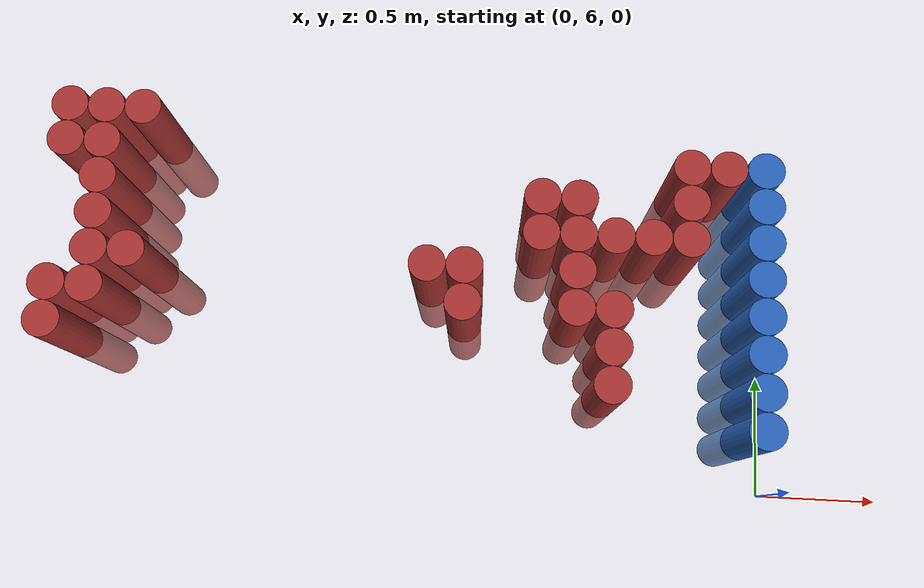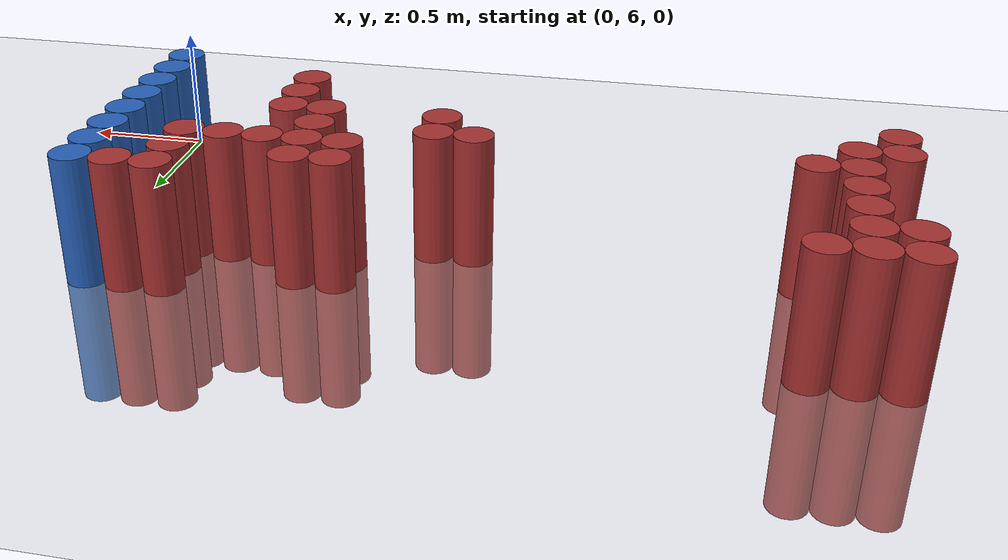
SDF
<sdf version="1.6">
 <world name="default">
  <model name="ground_plane">
   <static>1</static>
   <link name="link">
    <collision name="collision">
     <geometry><plane><normal>0 0 1</normal><size>100 100</size></plane></geometry>
     <surface><friction><ode><mu>100</mu><mu2>50</mu2></ode></friction></surface>
    </collision>
    <visual name="visual">
     <cast_shadows>0</cast_shadows>
     <geometry><plane><normal>0 0 1</normal><size>100 100</size></plane></geometry>
     <material>
      <script><uri>file://media/materials/scripts/gazebo.material</uri><name>Gazebo/Grey</name></script>
     </material>
    </visual>
   </link>
  </model>
  <model name="unit_cylinder_195">
   <static>1</static>
   <pose>-2.925000 6.525000 0.000000 0.000000 0.000000 0.000000</pose>
   <link name="link">
    <inertial>
     <mass>1</mass>
     <inertia><ixx>0.145833</ixx><ixy>0</ixy><ixz>0</ixz><iyy>0.145833</iyy><iyz>0</iyz><izz>0.125</izz></inertia>
    </inertial>
    <collision name="collision">
     <geometry><cylinder><radius>0.075000</radius><length>1</length></cylinder></geometry>
    </collision>
    <visual name="visual">
     <geometry><cylinder><radius>0.075000</radius><length>1</length></cylinder></geometry>
     <material>
      <ambient>0.648000 0.192000 0.192000 1</ambient>
      <diffuse>0.648000 0.192000 0.192000 1</diffuse>
     </material>
     <material>
      <script><name>Gazebo/Grey</name><uri>file://media/materials/scripts/gazebo.material</uri></script>
     </material>
    </visual>
    <sensor name="sensor_contact" type="contact"><contact><collision>collision</collision></contact></sensor>
   </link>
   <plugin filename="gz-sim-touchplugin-system" name="gz::sim::systems::TouchPlugin">
    <target>robot</target>
    <namespace>robot</namespace>
    <time>0.001</time>
    <enabled>true</enabled>
   </plugin>
  </model>
  <model name="unit_cylinder_196">
   <static>1</static>
   <pose>-2.925000 6.675000 0.000000 0.000000 0.000000 0.000000</pose>
   <link name="link">
    <inertial>
     <mass>1</mass>
     <inertia><ixx>0.145833</ixx><ixy>0</ixy><ixz>0</ixz><iyy>0.145833</iyy><iyz>0</iyz><izz>0.125</izz></inertia>
    </inertial>
    <collision name="collision">
     <geometry><cylinder><radius>0.075000</radius><length>1</length></cylinder></geometry>
    </collision>
    <visual name="visual">
     <geometry><cylinder><radius>0.075000</radius><length>1</length></cylinder></geometry>
     <material>
      <ambient>0.648000 0.192000 0.192000 1</ambient>
      <diffuse>0.648000 0.192000 0.192000 1</diffuse>
     </material>
     <material>
      <script><name>Gazebo/Grey</name><uri>file://media/materials/scripts/gazebo.material</uri></script>
     </material>
    </visual>
    <sensor name="sensor_contact" type="contact"><contact><collision>collision</collision></contact></sensor>
   </link>
   <plugin filename="gz-sim-touchplugin-system" name="gz::sim::systems::TouchPlugin">
    <target>robot</target>
    <namespace>robot</namespace>
    <time>0.001</time>
    <enabled>true</enabled>
   </plugin>
  </model>
  <model name="unit_cylinder_197">
   <static>1</static>
   <pose>-2.925000 7.275000 0.000000 0.000000 0.000000 0.000000</pose>
   <link name="link">
    <inertial>
     <mass>1</mass>
     <inertia><ixx>0.145833</ixx><ixy>0</ixy><ixz>0</ixz><iyy>0.145833</iyy><iyz>0</iyz><izz>0.125</izz></inertia>
    </inertial>
    <collision name="collision">
     <geometry><cylinder><radius>0.075000</radius><length>1</length></cylinder></geometry>
    </collision>
    <visual name="visual">
     <geometry><cylinder><radius>0.075000</radius><length>1</length></cylinder></geometry>
     <material>
      <ambient>0.648000 0.192000 0.192000 1</ambient>
      <diffuse>0.648000 0.192000 0.192000 1</diffuse>
     </material>
     <material>
      <script><name>Gazebo/Grey</name><uri>file://media/materials/scripts/gazebo.material</uri></script>
     </material>
    </visual>
    <sensor name="sensor_contact" type="contact"><contact><collision>collision</collision></contact></sensor>
   </link>
   <plugin filename="gz-sim-touchplugin-system" name="gz::sim::systems::TouchPlugin">
    <target>robot</target>
    <namespace>robot</namespace>
    <time>0.001</time>
    <enabled>true</enabled>
   </plugin>
  </model>
  <model name="unit_cylinder_198">
   <static>1</static>
   <pose>-2.925000 7.425000 0.000000 0.000000 0.000000 0.000000</pose>
   <link name="link">
    <inertial>
     <mass>1</mass>
     <inertia><ixx>0.145833</ixx><ixy>0</ixy><ixz>0</ixz><iyy>0.145833</iyy><iyz>0</iyz><izz>0.125</izz></inertia>
    </inertial>
    <collision name="collision">
     <geometry><cylinder><radius>0.075000</radius><length>1</length></cylinder></geometry>
    </collision>
    <visual name="visual">
     <geometry><cylinder><radius>0.075000</radius><length>1</length></cylinder></geometry>
     <material>
      <ambient>0.648000 0.192000 0.192000 1</ambient>
      <diffuse>0.648000 0.192000 0.192000 1</diffuse>
     </material>
     <material>
      <script><name>Gazebo/Grey</name><uri>file://media/materials/scripts/gazebo.material</uri></script>
     </material>
    </visual>
    <sensor name="sensor_contact" type="contact"><contact><collision>collision</collision></contact></sensor>
   </link>
   <plugin filename="gz-sim-touchplugin-system" name="gz::sim::systems::TouchPlugin">
    <target>robot</target>
    <namespace>robot</namespace>
    <time>0.001</time>
    <enabled>true</enabled>
   </plugin>
  </model>
  <model name="unit_cylinder_202">
   <static>1</static>
   <pose>-2.775000 6.675000 0.000000 0.000000 0.000000 0.000000</pose>
   <link name="link">
    <inertial>
     <mass>1</mass>
     <inertia><ixx>0.145833</ixx><ixy>0</ixy><ixz>0</ixz><iyy>0.145833</iyy><iyz>0</iyz><izz>0.125</izz></inertia>
    </inertial>
    <collision name="collision">
     <geometry><cylinder><radius>0.075000</radius><length>1</length></cylinder></geometry>
    </collision>
    <visual name="visual">
     <geometry><cylinder><radius>0.075000</radius><length>1</length></cylinder></geometry>
     <material>
      <ambient>0.648000 0.192000 0.192000 1</ambient>
      <diffuse>0.648000 0.192000 0.192000 1</diffuse>
     </material>
     <material>
      <script><name>Gazebo/Grey</name><uri>file://media/materials/scripts/gazebo.material</uri></script>
     </material>
    </visual>
    <sensor name="sensor_contact" type="contact"><contact><collision>collision</collision></contact></sensor>
   </link>
   <plugin filename="gz-sim-touchplugin-system" name="gz::sim::systems::TouchPlugin">
    <target>robot</target>
    <namespace>robot</namespace>
    <time>0.001</time>
    <enabled>true</enabled>
   </plugin>
  </model>
  <model name="unit_cylinder_203">
   <static>1</static>
   <pose>-2.775000 6.825000 0.000000 0.000000 0.000000 0.000000</pose>
   <link name="link">
    <inertial>
     <mass>1</mass>
     <inertia><ixx>0.145833</ixx><ixy>0</ixy><ixz>0</ixz><iyy>0.145833</iyy><iyz>0</iyz><izz>0.125</izz></inertia>
    </inertial>
    <collision name="collision">
     <geometry><cylinder><radius>0.075000</radius><length>1</length></cylinder></geometry>
    </collision>
    <visual name="visual">
     <geometry><cylinder><radius>0.075000</radius><length>1</length></cylinder></geometry>
     <material>
      <ambient>0.648000 0.192000 0.192000 1</ambient>
      <diffuse>0.648000 0.192000 0.192000 1</diffuse>
     </material>
     <material>
      <script><name>Gazebo/Grey</name><uri>file://media/materials/scripts/gazebo.material</uri></script>
     </material>
    </visual>
    <sensor name="sensor_contact" type="contact"><contact><collision>collision</collision></contact></sensor>
   </link>
   <plugin filename="gz-sim-touchplugin-system" name="gz::sim::systems::TouchPlugin">
    <target>robot</target>
    <namespace>robot</namespace>
    <time>0.001</time>
    <enabled>true</enabled>
   </plugin>
  </model>
  <model name="unit_cylinder_204">
   <static>1</static>
   <pose>-2.775000 6.975000 0.000000 0.000000 0.000000 0.000000</pose>
   <link name="link">
    <inertial>
     <mass>1</mass>
     <inertia><ixx>0.145833</ixx><ixy>0</ixy><ixz>0</ixz><iyy>0.145833</iyy><iyz>0</iyz><izz>0.125</izz></inertia>
    </inertial>
    <collision name="collision">
     <geometry><cylinder><radius>0.075000</radius><length>1</length></cylinder></geometry>
    </collision>
    <visual name="visual">
     <geometry><cylinder><radius>0.075000</radius><length>1</length></cylinder></geometry>
     <material>
      <ambient>0.648000 0.192000 0.192000 1</ambient>
      <diffuse>0.648000 0.192000 0.192000 1</diffuse>
     </material>
     <material>
      <script><name>Gazebo/Grey</name><uri>file://media/materials/scripts/gazebo.material</uri></script>
     </material>
    </visual>
    <sensor name="sensor_contact" type="contact"><contact><collision>collision</collision></contact></sensor>
   </link>
   <plugin filename="gz-sim-touchplugin-system" name="gz::sim::systems::TouchPlugin">
    <target>robot</target>
    <namespace>robot</namespace>
    <time>0.001</time>
    <enabled>true</enabled>
   </plugin>
  </model>
  <model name="unit_cylinder_205">
   <static>1</static>
   <pose>-2.775000 7.125000 0.000000 0.000000 0.000000 0.000000</pose>
   <link name="link">
    <inertial>
     <mass>1</mass>
     <inertia><ixx>0.145833</ixx><ixy>0</ixy><ixz>0</ixz><iyy>0.145833</iyy><iyz>0</iyz><izz>0.125</izz></inertia>
    </inertial>
    <collision name="collision">
     <geometry><cylinder><radius>0.075000</radius><length>1</length></cylinder></geometry>
    </collision>
    <visual name="visual">
     <geometry><cylinder><radius>0.075000</radius><length>1</length></cylinder></geometry>
     <material>
      <ambient>0.648000 0.192000 0.192000 1</ambient>
      <diffuse>0.648000 0.192000 0.192000 1</diffuse>
     </material>
     <material>
      <script><name>Gazebo/Grey</name><uri>file://media/materials/scripts/gazebo.material</uri></script>
     </material>
    </visual>
    <sensor name="sensor_contact" type="contact"><contact><collision>collision</collision></contact></sensor>
   </link>
   <plugin filename="gz-sim-touchplugin-system" name="gz::sim::systems::TouchPlugin">
    <target>robot</target>
    <namespace>robot</namespace>
    <time>0.001</time>
    <enabled>true</enabled>
   </plugin>
  </model>
  <model name="unit_cylinder_206">
   <static>1</static>
   <pose>-2.775000 7.275000 0.000000 0.000000 0.000000 0.000000</pose>
   <link name="link">
    <inertial>
     <mass>1</mass>
     <inertia><ixx>0.145833</ixx><ixy>0</ixy><ixz>0</ixz><iyy>0.145833</iyy><iyz>0</iyz><izz>0.125</izz></inertia>
    </inertial>
    <collision name="collision">
     <geometry><cylinder><radius>0.075000</radius><length>1</length></cylinder></geometry>
    </collision>
    <visual name="visual">
     <geometry><cylinder><radius>0.075000</radius><length>1</length></cylinder></geometry>
     <material>
      <ambient>0.648000 0.192000 0.192000 1</ambient>
      <diffuse>0.648000 0.192000 0.192000 1</diffuse>
     </material>
     <material>
      <script><name>Gazebo/Grey</name><uri>file://media/materials/scripts/gazebo.material</uri></script>
     </material>
    </visual>
    <sensor name="sensor_contact" type="contact"><contact><collision>collision</collision></contact></sensor>
   </link>
   <plugin filename="gz-sim-touchplugin-system" name="gz::sim::systems::TouchPlugin">
    <target>robot</target>
    <namespace>robot</namespace>
    <time>0.001</time>
    <enabled>true</enabled>
   </plugin>
  </model>
  <model name="unit_cylinder_207">
   <static>1</static>
   <pose>-2.775000 7.425000 0.000000 0.000000 0.000000 0.000000</pose>
   <link name="link">
    <inertial>
     <mass>1</mass>
     <inertia><ixx>0.145833</ixx><ixy>0</ixy><ixz>0</ixz><iyy>0.145833</iyy><iyz>0</iyz><izz>0.125</izz></inertia>
    </inertial>
    <collision name="collision">
     <geometry><cylinder><radius>0.075000</radius><length>1</length></cylinder></geometry>
    </collision>
    <visual name="visual">
     <geometry><cylinder><radius>0.075000</radius><length>1</length></cylinder></geometry>
     <material>
      <ambient>0.648000 0.192000 0.192000 1</ambient>
      <diffuse>0.648000 0.192000 0.192000 1</diffuse>
     </material>
     <material>
      <script><name>Gazebo/Grey</name><uri>file://media/materials/scripts/gazebo.material</uri></script>
     </material>
    </visual>
    <sensor name="sensor_contact" type="contact"><contact><collision>collision</collision></contact></sensor>
   </link>
   <plugin filename="gz-sim-touchplugin-system" name="gz::sim::systems::TouchPlugin">
    <target>robot</target>
    <namespace>robot</namespace>
    <time>0.001</time>
    <enabled>true</enabled>
   </plugin>
  </model>
  <model name="unit_cylinder_209">
   <static>1</static>
   <pose>-2.625000 6.825000 0.000000 0.000000 0.000000 0.000000</pose>
   <link name="link">
    <inertial>
     <mass>1</mass>
     <inertia><ixx>0.145833</ixx><ixy>0</ixy><ixz>0</ixz><iyy>0.145833</iyy><iyz>0</iyz><izz>0.125</izz></inertia>
    </inertial>
    <collision name="collision">
     <geometry><cylinder><radius>0.075000</radius><length>1</length></cylinder></geometry>
    </collision>
    <visual name="visual">
     <geometry><cylinder><radius>0.075000</radius><length>1</length></cylinder></geometry>
     <material>
      <ambient>0.648000 0.192000 0.192000 1</ambient>
      <diffuse>0.648000 0.192000 0.192000 1</diffuse>
     </material>
     <material>
      <script><name>Gazebo/Grey</name><uri>file://media/materials/scripts/gazebo.material</uri></script>
     </material>
    </visual>
    <sensor name="sensor_contact" type="contact"><contact><collision>collision</collision></contact></sensor>
   </link>
   <plugin filename="gz-sim-touchplugin-system" name="gz::sim::systems::TouchPlugin">
    <target>robot</target>
    <namespace>robot</namespace>
    <time>0.001</time>
    <enabled>true</enabled>
   </plugin>
  </model>
  <model name="unit_cylinder_210">
   <static>1</static>
   <pose>-2.625000 7.425000 0.000000 0.000000 0.000000 0.000000</pose>
   <link name="link">
    <inertial>
     <mass>1</mass>
     <inertia><ixx>0.145833</ixx><ixy>0</ixy><ixz>0</ixz><iyy>0.145833</iyy><iyz>0</iyz><izz>0.125</izz></inertia>
    </inertial>
    <collision name="collision">
     <geometry><cylinder><radius>0.075000</radius><length>1</length></cylinder></geometry>
    </collision>
    <visual name="visual">
     <geometry><cylinder><radius>0.075000</radius><length>1</length></cylinder></geometry>
     <material>
      <ambient>0.648000 0.192000 0.192000 1</ambient>
      <diffuse>0.648000 0.192000 0.192000 1</diffuse>
     </material>
     <material>
      <script><name>Gazebo/Grey</name><uri>file://media/materials/scripts/gazebo.material</uri></script>
     </material>
    </visual>
    <sensor name="sensor_contact" type="contact"><contact><collision>collision</collision></contact></sensor>
   </link>
   <plugin filename="gz-sim-touchplugin-system" name="gz::sim::systems::TouchPlugin">
    <target>robot</target>
    <namespace>robot</namespace>
    <time>0.001</time>
    <enabled>true</enabled>
   </plugin>
  </model>
  <model name="unit_cylinder_231">
   <static>1</static>
   <pose>-1.425000 6.825000 0.000000 0.000000 0.000000 0.000000</pose>
   <link name="link">
    <inertial>
     <mass>1</mass>
     <inertia><ixx>0.145833</ixx><ixy>0</ixy><ixz>0</ixz><iyy>0.145833</iyy><iyz>0</iyz><izz>0.125</izz></inertia>
    </inertial>
    <collision name="collision">
     <geometry><cylinder><radius>0.075000</radius><length>1</length></cylinder></geometry>
    </collision>
    <visual name="visual">
     <geometry><cylinder><radius>0.075000</radius><length>1</length></cylinder></geometry>
     <material>
      <ambient>0.648000 0.192000 0.192000 1</ambient>
      <diffuse>0.648000 0.192000 0.192000 1</diffuse>
     </material>
     <material>
      <script><name>Gazebo/Grey</name><uri>file://media/materials/scripts/gazebo.material</uri></script>
     </material>
    </visual>
    <sensor name="sensor_contact" type="contact"><contact><collision>collision</collision></contact></sensor>
   </link>
   <plugin filename="gz-sim-touchplugin-system" name="gz::sim::systems::TouchPlugin">
    <target>robot</target>
    <namespace>robot</namespace>
    <time>0.001</time>
    <enabled>true</enabled>
   </plugin>
  </model>
  <model name="unit_cylinder_240">
   <static>1</static>
   <pose>-1.275000 6.675000 0.000000 0.000000 0.000000 0.000000</pose>
   <link name="link">
    <inertial>
     <mass>1</mass>
     <inertia><ixx>0.145833</ixx><ixy>0</ixy><ixz>0</ixz><iyy>0.145833</iyy><iyz>0</iyz><izz>0.125</izz></inertia>
    </inertial>
    <collision name="collision">
     <geometry><cylinder><radius>0.075000</radius><length>1</length></cylinder></geometry>
    </collision>
    <visual name="visual">
     <geometry><cylinder><radius>0.075000</radius><length>1</length></cylinder></geometry>
     <material>
      <ambient>0.648000 0.192000 0.192000 1</ambient>
      <diffuse>0.648000 0.192000 0.192000 1</diffuse>
     </material>
     <material>
      <script><name>Gazebo/Grey</name><uri>file://media/materials/scripts/gazebo.material</uri></script>
     </material>
    </visual>
    <sensor name="sensor_contact" type="contact"><contact><collision>collision</collision></contact></sensor>
   </link>
   <plugin filename="gz-sim-touchplugin-system" name="gz::sim::systems::TouchPlugin">
    <target>robot</target>
    <namespace>robot</namespace>
    <time>0.001</time>
    <enabled>true</enabled>
   </plugin>
  </model>
  <model name="unit_cylinder_241">
   <static>1</static>
   <pose>-1.275000 6.825000 0.000000 0.000000 0.000000 0.000000</pose>
   <link name="link">
    <inertial>
     <mass>1</mass>
     <inertia><ixx>0.145833</ixx><ixy>0</ixy><ixz>0</ixz><iyy>0.145833</iyy><iyz>0</iyz><izz>0.125</izz></inertia>
    </inertial>
    <collision name="collision">
     <geometry><cylinder><radius>0.075000</radius><length>1</length></cylinder></geometry>
    </collision>
    <visual name="visual">
     <geometry><cylinder><radius>0.075000</radius><length>1</length></cylinder></geometry>
     <material>
      <ambient>0.648000 0.192000 0.192000 1</ambient>
      <diffuse>0.648000 0.192000 0.192000 1</diffuse>
     </material>
     <material>
      <script><name>Gazebo/Grey</name><uri>file://media/materials/scripts/gazebo.material</uri></script>
     </material>
    </visual>
    <sensor name="sensor_contact" type="contact"><contact><collision>collision</collision></contact></sensor>
   </link>
   <plugin filename="gz-sim-touchplugin-system" name="gz::sim::systems::TouchPlugin">
    <target>robot</target>
    <namespace>robot</namespace>
    <time>0.001</time>
    <enabled>true</enabled>
   </plugin>
  </model>
  <model name="unit_cylinder_253">
   <static>1</static>
   <pose>-0.975000 6.975000 0.000000 0.000000 0.000000 0.000000</pose>
   <link name="link">
    <inertial>
     <mass>1</mass>
     <inertia><ixx>0.145833</ixx><ixy>0</ixy><ixz>0</ixz><iyy>0.145833</iyy><iyz>0</iyz><izz>0.125</izz></inertia>
    </inertial>
    <collision name="collision">
     <geometry><cylinder><radius>0.075000</radius><length>1</length></cylinder></geometry>
    </collision>
    <visual name="visual">
     <geometry><cylinder><radius>0.075000</radius><length>1</length></cylinder></geometry>
     <material>
      <ambient>0.648000 0.192000 0.192000 1</ambient>
      <diffuse>0.648000 0.192000 0.192000 1</diffuse>
     </material>
     <material>
      <script><name>Gazebo/Grey</name><uri>file://media/materials/scripts/gazebo.material</uri></script>
     </material>
    </visual>
    <sensor name="sensor_contact" type="contact"><contact><collision>collision</collision></contact></sensor>
   </link>
   <plugin filename="gz-sim-touchplugin-system" name="gz::sim::systems::TouchPlugin">
    <target>robot</target>
    <namespace>robot</namespace>
    <time>0.001</time>
    <enabled>true</enabled>
   </plugin>
  </model>
  <model name="unit_cylinder_254">
   <static>1</static>
   <pose>-0.975000 7.125000 0.000000 0.000000 0.000000 0.000000</pose>
   <link name="link">
    <inertial>
     <mass>1</mass>
     <inertia><ixx>0.145833</ixx><ixy>0</ixy><ixz>0</ixz><iyy>0.145833</iyy><iyz>0</iyz><izz>0.125</izz></inertia>
    </inertial>
    <collision name="collision">
     <geometry><cylinder><radius>0.075000</radius><length>1</length></cylinder></geometry>
    </collision>
    <visual name="visual">
     <geometry><cylinder><radius>0.075000</radius><length>1</length></cylinder></geometry>
     <material>
      <ambient>0.648000 0.192000 0.192000 1</ambient>
      <diffuse>0.648000 0.192000 0.192000 1</diffuse>
     </material>
     <material>
      <script><name>Gazebo/Grey</name><uri>file://media/materials/scripts/gazebo.material</uri></script>
     </material>
    </visual>
    <sensor name="sensor_contact" type="contact"><contact><collision>collision</collision></contact></sensor>
   </link>
   <plugin filename="gz-sim-touchplugin-system" name="gz::sim::systems::TouchPlugin">
    <target>robot</target>
    <namespace>robot</namespace>
    <time>0.001</time>
    <enabled>true</enabled>
   </plugin>
  </model>
  <model name="unit_cylinder_261">
   <static>1</static>
   <pose>-0.825000 6.675000 0.000000 0.000000 0.000000 0.000000</pose>
   <link name="link">
    <inertial>
     <mass>1</mass>
     <inertia><ixx>0.145833</ixx><ixy>0</ixy><ixz>0</ixz><iyy>0.145833</iyy><iyz>0</iyz><izz>0.125</izz></inertia>
    </inertial>
    <collision name="collision">
     <geometry><cylinder><radius>0.075000</radius><length>1</length></cylinder></geometry>
    </collision>
    <visual name="visual">
     <geometry><cylinder><radius>0.075000</radius><length>1</length></cylinder></geometry>
     <material>
      <ambient>0.648000 0.192000 0.192000 1</ambient>
      <diffuse>0.648000 0.192000 0.192000 1</diffuse>
     </material>
     <material>
      <script><name>Gazebo/Grey</name><uri>file://media/materials/scripts/gazebo.material</uri></script>
     </material>
    </visual>
    <sensor name="sensor_contact" type="contact"><contact><collision>collision</collision></contact></sensor>
   </link>
   <plugin filename="gz-sim-touchplugin-system" name="gz::sim::systems::TouchPlugin">
    <target>robot</target>
    <namespace>robot</namespace>
    <time>0.001</time>
    <enabled>true</enabled>
   </plugin>
  </model>
  <model name="unit_cylinder_262">
   <static>1</static>
   <pose>-0.825000 6.825000 0.000000 0.000000 0.000000 0.000000</pose>
   <link name="link">
    <inertial>
     <mass>1</mass>
     <inertia><ixx>0.145833</ixx><ixy>0</ixy><ixz>0</ixz><iyy>0.145833</iyy><iyz>0</iyz><izz>0.125</izz></inertia>
    </inertial>
    <collision name="collision">
     <geometry><cylinder><radius>0.075000</radius><length>1</length></cylinder></geometry>
    </collision>
    <visual name="visual">
     <geometry><cylinder><radius>0.075000</radius><length>1</length></cylinder></geometry>
     <material>
      <ambient>0.648000 0.192000 0.192000 1</ambient>
      <diffuse>0.648000 0.192000 0.192000 1</diffuse>
     </material>
     <material>
      <script><name>Gazebo/Grey</name><uri>file://media/materials/scripts/gazebo.material</uri></script>
     </material>
    </visual>
    <sensor name="sensor_contact" type="contact"><contact><collision>collision</collision></contact></sensor>
   </link>
   <plugin filename="gz-sim-touchplugin-system" name="gz::sim::systems::TouchPlugin">
    <target>robot</target>
    <namespace>robot</namespace>
    <time>0.001</time>
    <enabled>true</enabled>
   </plugin>
  </model>
  <model name="unit_cylinder_263">
   <static>1</static>
   <pose>-0.825000 6.975000 0.000000 0.000000 0.000000 0.000000</pose>
   <link name="link">
    <inertial>
     <mass>1</mass>
     <inertia><ixx>0.145833</ixx><ixy>0</ixy><ixz>0</ixz><iyy>0.145833</iyy><iyz>0</iyz><izz>0.125</izz></inertia>
    </inertial>
    <collision name="collision">
     <geometry><cylinder><radius>0.075000</radius><length>1</length></cylinder></geometry>
    </collision>
    <visual name="visual">
     <geometry><cylinder><radius>0.075000</radius><length>1</length></cylinder></geometry>
     <material>
      <ambient>0.648000 0.192000 0.192000 1</ambient>
      <diffuse>0.648000 0.192000 0.192000 1</diffuse>
     </material>
     <material>
      <script><name>Gazebo/Grey</name><uri>file://media/materials/scripts/gazebo.material</uri></script>
     </material>
    </visual>
    <sensor name="sensor_contact" type="contact"><contact><collision>collision</collision></contact></sensor>
   </link>
   <plugin filename="gz-sim-touchplugin-system" name="gz::sim::systems::TouchPlugin">
    <target>robot</target>
    <namespace>robot</namespace>
    <time>0.001</time>
    <enabled>true</enabled>
   </plugin>
  </model>
  <model name="unit_cylinder_264">
   <static>1</static>
   <pose>-0.825000 7.125000 0.000000 0.000000 0.000000 0.000000</pose>
   <link name="link">
    <inertial>
     <mass>1</mass>
     <inertia><ixx>0.145833</ixx><ixy>0</ixy><ixz>0</ixz><iyy>0.145833</iyy><iyz>0</iyz><izz>0.125</izz></inertia>
    </inertial>
    <collision name="collision">
     <geometry><cylinder><radius>0.075000</radius><length>1</length></cylinder></geometry>
    </collision>
    <visual name="visual">
     <geometry><cylinder><radius>0.075000</radius><length>1</length></cylinder></geometry>
     <material>
      <ambient>0.648000 0.192000 0.192000 1</ambient>
      <diffuse>0.648000 0.192000 0.192000 1</diffuse>
     </material>
     <material>
      <script><name>Gazebo/Grey</name><uri>file://media/materials/scripts/gazebo.material</uri></script>
     </material>
    </visual>
    <sensor name="sensor_contact" type="contact"><contact><collision>collision</collision></contact></sensor>
   </link>
   <plugin filename="gz-sim-touchplugin-system" name="gz::sim::systems::TouchPlugin">
    <target>robot</target>
    <namespace>robot</namespace>
    <time>0.001</time>
    <enabled>true</enabled>
   </plugin>
  </model>
  <model name="unit_cylinder_276">
   <static>1</static>
   <pose>-0.675000 6.375000 0.000000 0.000000 0.000000 0.000000</pose>
   <link name="link">
    <inertial>
     <mass>1</mass>
     <inertia><ixx>0.145833</ixx><ixy>0</ixy><ixz>0</ixz><iyy>0.145833</iyy><iyz>0</iyz><izz>0.125</izz></inertia>
    </inertial>
    <collision name="collision">
     <geometry><cylinder><radius>0.075000</radius><length>1</length></cylinder></geometry>
    </collision>
    <visual name="visual">
     <geometry><cylinder><radius>0.075000</radius><length>1</length></cylinder></geometry>
     <material>
      <ambient>0.648000 0.192000 0.192000 1</ambient>
      <diffuse>0.648000 0.192000 0.192000 1</diffuse>
     </material>
     <material>
      <script><name>Gazebo/Grey</name><uri>file://media/materials/scripts/gazebo.material</uri></script>
     </material>
    </visual>
    <sensor name="sensor_contact" type="contact"><contact><collision>collision</collision></contact></sensor>
   </link>
   <plugin filename="gz-sim-touchplugin-system" name="gz::sim::systems::TouchPlugin">
    <target>robot</target>
    <namespace>robot</namespace>
    <time>0.001</time>
    <enabled>true</enabled>
   </plugin>
  </model>
  <model name="unit_cylinder_277">
   <static>1</static>
   <pose>-0.675000 6.525000 0.000000 0.000000 0.000000 0.000000</pose>
   <link name="link">
    <inertial>
     <mass>1</mass>
     <inertia><ixx>0.145833</ixx><ixy>0</ixy><ixz>0</ixz><iyy>0.145833</iyy><iyz>0</iyz><izz>0.125</izz></inertia>
    </inertial>
    <collision name="collision">
     <geometry><cylinder><radius>0.075000</radius><length>1</length></cylinder></geometry>
    </collision>
    <visual name="visual">
     <geometry><cylinder><radius>0.075000</radius><length>1</length></cylinder></geometry>
     <material>
      <ambient>0.648000 0.192000 0.192000 1</ambient>
      <diffuse>0.648000 0.192000 0.192000 1</diffuse>
     </material>
     <material>
      <script><name>Gazebo/Grey</name><uri>file://media/materials/scripts/gazebo.material</uri></script>
     </material>
    </visual>
    <sensor name="sensor_contact" type="contact"><contact><collision>collision</collision></contact></sensor>
   </link>
   <plugin filename="gz-sim-touchplugin-system" name="gz::sim::systems::TouchPlugin">
    <target>robot</target>
    <namespace>robot</namespace>
    <time>0.001</time>
    <enabled>true</enabled>
   </plugin>
  </model>
  <model name="unit_cylinder_278">
   <static>1</static>
   <pose>-0.675000 6.675000 0.000000 0.000000 0.000000 0.000000</pose>
   <link name="link">
    <inertial>
     <mass>1</mass>
     <inertia><ixx>0.145833</ixx><ixy>0</ixy><ixz>0</ixz><iyy>0.145833</iyy><iyz>0</iyz><izz>0.125</izz></inertia>
    </inertial>
    <collision name="collision">
     <geometry><cylinder><radius>0.075000</radius><length>1</length></cylinder></geometry>
    </collision>
    <visual name="visual">
     <geometry><cylinder><radius>0.075000</radius><length>1</length></cylinder></geometry>
     <material>
      <ambient>0.648000 0.192000 0.192000 1</ambient>
      <diffuse>0.648000 0.192000 0.192000 1</diffuse>
     </material>
     <material>
      <script><name>Gazebo/Grey</name><uri>file://media/materials/scripts/gazebo.material</uri></script>
     </material>
    </visual>
    <sensor name="sensor_contact" type="contact"><contact><collision>collision</collision></contact></sensor>
   </link>
   <plugin filename="gz-sim-touchplugin-system" name="gz::sim::systems::TouchPlugin">
    <target>robot</target>
    <namespace>robot</namespace>
    <time>0.001</time>
    <enabled>true</enabled>
   </plugin>
  </model>
  <model name="unit_cylinder_279">
   <static>1</static>
   <pose>-0.675000 6.975000 0.000000 0.000000 0.000000 0.000000</pose>
   <link name="link">
    <inertial>
     <mass>1</mass>
     <inertia><ixx>0.145833</ixx><ixy>0</ixy><ixz>0</ixz><iyy>0.145833</iyy><iyz>0</iyz><izz>0.125</izz></inertia>
    </inertial>
    <collision name="collision">
     <geometry><cylinder><radius>0.075000</radius><length>1</length></cylinder></geometry>
    </collision>
    <visual name="visual">
     <geometry><cylinder><radius>0.075000</radius><length>1</length></cylinder></geometry>
     <material>
      <ambient>0.648000 0.192000 0.192000 1</ambient>
      <diffuse>0.648000 0.192000 0.192000 1</diffuse>
     </material>
     <material>
      <script><name>Gazebo/Grey</name><uri>file://media/materials/scripts/gazebo.material</uri></script>
     </material>
    </visual>
    <sensor name="sensor_contact" type="contact"><contact><collision>collision</collision></contact></sensor>
   </link>
   <plugin filename="gz-sim-touchplugin-system" name="gz::sim::systems::TouchPlugin">
    <target>robot</target>
    <namespace>robot</namespace>
    <time>0.001</time>
    <enabled>true</enabled>
   </plugin>
  </model>
  <model name="unit_cylinder_291">
   <static>1</static>
   <pose>-0.525000 6.975000 0.000000 0.000000 0.000000 0.000000</pose>
   <link name="link">
    <inertial>
     <mass>1</mass>
     <inertia><ixx>0.145833</ixx><ixy>0</ixy><ixz>0</ixz><iyy>0.145833</iyy><iyz>0</iyz><izz>0.125</izz></inertia>
    </inertial>
    <collision name="collision">
     <geometry><cylinder><radius>0.075000</radius><length>1</length></cylinder></geometry>
    </collision>
    <visual name="visual">
     <geometry><cylinder><radius>0.075000</radius><length>1</length></cylinder></geometry>
     <material>
      <ambient>0.648000 0.192000 0.192000 1</ambient>
      <diffuse>0.648000 0.192000 0.192000 1</diffuse>
     </material>
     <material>
      <script><name>Gazebo/Grey</name><uri>file://media/materials/scripts/gazebo.material</uri></script>
     </material>
    </visual>
    <sensor name="sensor_contact" type="contact"><contact><collision>collision</collision></contact></sensor>
   </link>
   <plugin filename="gz-sim-touchplugin-system" name="gz::sim::systems::TouchPlugin">
    <target>robot</target>
    <namespace>robot</namespace>
    <time>0.001</time>
    <enabled>true</enabled>
   </plugin>
  </model>
  <model name="unit_cylinder_299">
   <static>1</static>
   <pose>-0.375000 6.975000 0.000000 0.000000 0.000000 0.000000</pose>
   <link name="link">
    <inertial>
     <mass>1</mass>
     <inertia><ixx>0.145833</ixx><ixy>0</ixy><ixz>0</ixz><iyy>0.145833</iyy><iyz>0</iyz><izz>0.125</izz></inertia>
    </inertial>
    <collision name="collision">
     <geometry><cylinder><radius>0.075000</radius><length>1</length></cylinder></geometry>
    </collision>
    <visual name="visual">
     <geometry><cylinder><radius>0.075000</radius><length>1</length></cylinder></geometry>
     <material>
      <ambient>0.648000 0.192000 0.192000 1</ambient>
      <diffuse>0.648000 0.192000 0.192000 1</diffuse>
     </material>
     <material>
      <script><name>Gazebo/Grey</name><uri>file://media/materials/scripts/gazebo.material</uri></script>
     </material>
    </visual>
    <sensor name="sensor_contact" type="contact"><contact><collision>collision</collision></contact></sensor>
   </link>
   <plugin filename="gz-sim-touchplugin-system" name="gz::sim::systems::TouchPlugin">
    <target>robot</target>
    <namespace>robot</namespace>
    <time>0.001</time>
    <enabled>true</enabled>
   </plugin>
  </model>
  <model name="unit_cylinder_300">
   <static>1</static>
   <pose>-0.375000 7.125000 0.000000 0.000000 0.000000 0.000000</pose>
   <link name="link">
    <inertial>
     <mass>1</mass>
     <inertia><ixx>0.145833</ixx><ixy>0</ixy><ixz>0</ixz><iyy>0.145833</iyy><iyz>0</iyz><izz>0.125</izz></inertia>
    </inertial>
    <collision name="collision">
     <geometry><cylinder><radius>0.075000</radius><length>1</length></cylinder></geometry>
    </collision>
    <visual name="visual">
     <geometry><cylinder><radius>0.075000</radius><length>1</length></cylinder></geometry>
     <material>
      <ambient>0.648000 0.192000 0.192000 1</ambient>
      <diffuse>0.648000 0.192000 0.192000 1</diffuse>
     </material>
     <material>
      <script><name>Gazebo/Grey</name><uri>file://media/materials/scripts/gazebo.material</uri></script>
     </material>
    </visual>
    <sensor name="sensor_contact" type="contact"><contact><collision>collision</collision></contact></sensor>
   </link>
   <plugin filename="gz-sim-touchplugin-system" name="gz::sim::systems::TouchPlugin">
    <target>robot</target>
    <namespace>robot</namespace>
    <time>0.001</time>
    <enabled>true</enabled>
   </plugin>
  </model>
  <model name="unit_cylinder_301">
   <static>1</static>
   <pose>-0.375000 7.275000 0.000000 0.000000 0.000000 0.000000</pose>
   <link name="link">
    <inertial>
     <mass>1</mass>
     <inertia><ixx>0.145833</ixx><ixy>0</ixy><ixz>0</ixz><iyy>0.145833</iyy><iyz>0</iyz><izz>0.125</izz></inertia>
    </inertial>
    <collision name="collision">
     <geometry><cylinder><radius>0.075000</radius><length>1</length></cylinder></geometry>
    </collision>
    <visual name="visual">
     <geometry><cylinder><radius>0.075000</radius><length>1</length></cylinder></geometry>
     <material>
      <ambient>0.648000 0.192000 0.192000 1</ambient>
      <diffuse>0.648000 0.192000 0.192000 1</diffuse>
     </material>
     <material>
      <script><name>Gazebo/Grey</name><uri>file://media/materials/scripts/gazebo.material</uri></script>
     </material>
    </visual>
    <sensor name="sensor_contact" type="contact"><contact><collision>collision</collision></contact></sensor>
   </link>
   <plugin filename="gz-sim-touchplugin-system" name="gz::sim::systems::TouchPlugin">
    <target>robot</target>
    <namespace>robot</namespace>
    <time>0.001</time>
    <enabled>true</enabled>
   </plugin>
  </model>
  <model name="unit_cylinder_309">
   <static>1</static>
   <pose>-0.225000 7.275000 0.000000 0.000000 0.000000 0.000000</pose>
   <link name="link">
    <inertial>
     <mass>1</mass>
     <inertia><ixx>0.145833</ixx><ixy>0</ixy><ixz>0</ixz><iyy>0.145833</iyy><iyz>0</iyz><izz>0.125</izz></inertia>
    </inertial>
    <collision name="collision">
     <geometry><cylinder><radius>0.075000</radius><length>1</length></cylinder></geometry>
    </collision>
    <visual name="visual">
     <geometry><cylinder><radius>0.075000</radius><length>1</length></cylinder></geometry>
     <material>
      <ambient>0.648000 0.192000 0.192000 1</ambient>
      <diffuse>0.648000 0.192000 0.192000 1</diffuse>
     </material>
     <material>
      <script><name>Gazebo/Grey</name><uri>file://media/materials/scripts/gazebo.material</uri></script>
     </material>
    </visual>
    <sensor name="sensor_contact" type="contact"><contact><collision>collision</collision></contact></sensor>
   </link>
   <plugin filename="gz-sim-touchplugin-system" name="gz::sim::systems::TouchPlugin">
    <target>robot</target>
    <namespace>robot</namespace>
    <time>0.001</time>
    <enabled>true</enabled>
   </plugin>
  </model>
  <model name="unit_cylinder_321">
   <static>1</static>
   <pose>-0.075000 6.225000 0.000000 0.000000 0.000000 0.000000</pose>
   <link name="link">
    <inertial>
     <mass>1</mass>
     <inertia><ixx>0.145833</ixx><ixy>0</ixy><ixz>0</ixz><iyy>0.145833</iyy><iyz>0</iyz><izz>0.125</izz></inertia>
    </inertial>
    <collision name="collision">
     <geometry><cylinder><radius>0.075000</radius><length>1</length></cylinder></geometry>
    </collision>
    <visual name="visual">
     <geometry><cylinder><radius>0.075000</radius><length>1</length></cylinder></geometry>
     <material>
      <ambient>0.152000 0.379000 0.720000 1</ambient>
      <diffuse>0.152000 0.379000 0.720000 1</diffuse>
     </material>
     <material>
      <script><name>Gazebo/Grey</name><uri>file://media/materials/scripts/gazebo.material</uri></script>
     </material>
    </visual>
    <sensor name="sensor_contact" type="contact"><contact><collision>collision</collision></contact></sensor>
   </link>
   <plugin filename="gz-sim-touchplugin-system" name="gz::sim::systems::TouchPlugin">
    <target>robot</target>
    <namespace>robot</namespace>
    <time>0.001</time>
    <enabled>true</enabled>
   </plugin>
  </model>
  <model name="unit_cylinder_322">
   <static>1</static>
   <pose>-0.075000 6.375000 0.000000 0.000000 0.000000 0.000000</pose>
   <link name="link">
    <inertial>
     <mass>1</mass>
     <inertia><ixx>0.145833</ixx><ixy>0</ixy><ixz>0</ixz><iyy>0.145833</iyy><iyz>0</iyz><izz>0.125</izz></inertia>
    </inertial>
    <collision name="collision">
     <geometry><cylinder><radius>0.075000</radius><length>1</length></cylinder></geometry>
    </collision>
    <visual name="visual">
     <geometry><cylinder><radius>0.075000</radius><length>1</length></cylinder></geometry>
     <material>
      <ambient>0.152000 0.379000 0.720000 1</ambient>
      <diffuse>0.152000 0.379000 0.720000 1</diffuse>
     </material>
     <material>
      <script><name>Gazebo/Grey</name><uri>file://media/materials/scripts/gazebo.material</uri></script>
     </material>
    </visual>
    <sensor name="sensor_contact" type="contact"><contact><collision>collision</collision></contact></sensor>
   </link>
   <plugin filename="gz-sim-touchplugin-system" name="gz::sim::systems::TouchPlugin">
    <target>robot</target>
    <namespace>robot</namespace>
    <time>0.001</time>
    <enabled>true</enabled>
   </plugin>
  </model>
  <model name="unit_cylinder_323">
   <static>1</static>
   <pose>-0.075000 6.525000 0.000000 0.000000 0.000000 0.000000</pose>
   <link name="link">
    <inertial>
     <mass>1</mass>
     <inertia><ixx>0.145833</ixx><ixy>0</ixy><ixz>0</ixz><iyy>0.145833</iyy><iyz>0</iyz><izz>0.125</izz></inertia>
    </inertial>
    <collision name="collision">
     <geometry><cylinder><radius>0.075000</radius><length>1</length></cylinder></geometry>
    </collision>
    <visual name="visual">
     <geometry><cylinder><radius>0.075000</radius><length>1</length></cylinder></geometry>
     <material>
      <ambient>0.152000 0.379000 0.720000 1</ambient>
      <diffuse>0.152000 0.379000 0.720000 1</diffuse>
     </material>
     <material>
      <script><name>Gazebo/Grey</name><uri>file://media/materials/scripts/gazebo.material</uri></script>
     </material>
    </visual>
    <sensor name="sensor_contact" type="contact"><contact><collision>collision</collision></contact></sensor>
   </link>
   <plugin filename="gz-sim-touchplugin-system" name="gz::sim::systems::TouchPlugin">
    <target>robot</target>
    <namespace>robot</namespace>
    <time>0.001</time>
    <enabled>true</enabled>
   </plugin>
  </model>
  <model name="unit_cylinder_324">
   <static>1</static>
   <pose>-0.075000 6.675000 0.000000 0.000000 0.000000 0.000000</pose>
   <link name="link">
    <inertial>
     <mass>1</mass>
     <inertia><ixx>0.145833</ixx><ixy>0</ixy><ixz>0</ixz><iyy>0.145833</iyy><iyz>0</iyz><izz>0.125</izz></inertia>
    </inertial>
    <collision name="collision">
     <geometry><cylinder><radius>0.075000</radius><length>1</length></cylinder></geometry>
    </collision>
    <visual name="visual">
     <geometry><cylinder><radius>0.075000</radius><length>1</length></cylinder></geometry>
     <material>
      <ambient>0.152000 0.379000 0.720000 1</ambient>
      <diffuse>0.152000 0.379000 0.720000 1</diffuse>
     </material>
     <material>
      <script><name>Gazebo/Grey</name><uri>file://media/materials/scripts/gazebo.material</uri></script>
     </material>
    </visual>
    <sensor name="sensor_contact" type="contact"><contact><collision>collision</collision></contact></sensor>
   </link>
   <plugin filename="gz-sim-touchplugin-system" name="gz::sim::systems::TouchPlugin">
    <target>robot</target>
    <namespace>robot</namespace>
    <time>0.001</time>
    <enabled>true</enabled>
   </plugin>
  </model>
  <model name="unit_cylinder_325">
   <static>1</static>
   <pose>-0.075000 6.825000 0.000000 0.000000 0.000000 0.000000</pose>
   <link name="link">
    <inertial>
     <mass>1</mass>
     <inertia><ixx>0.145833</ixx><ixy>0</ixy><ixz>0</ixz><iyy>0.145833</iyy><iyz>0</iyz><izz>0.125</izz></inertia>
    </inertial>
    <collision name="collision">
     <geometry><cylinder><radius>0.075000</radius><length>1</length></cylinder></geometry>
    </collision>
    <visual name="visual">
     <geometry><cylinder><radius>0.075000</radius><length>1</length></cylinder></geometry>
     <material>
      <ambient>0.152000 0.379000 0.720000 1</ambient>
      <diffuse>0.152000 0.379000 0.720000 1</diffuse>
     </material>
     <material>
      <script><name>Gazebo/Grey</name><uri>file://media/materials/scripts/gazebo.material</uri></script>
     </material>
    </visual>
    <sensor name="sensor_contact" type="contact"><contact><collision>collision</collision></contact></sensor>
   </link>
   <plugin filename="gz-sim-touchplugin-system" name="gz::sim::systems::TouchPlugin">
    <target>robot</target>
    <namespace>robot</namespace>
    <time>0.001</time>
    <enabled>true</enabled>
   </plugin>
  </model>
  <model name="unit_cylinder_326">
   <static>1</static>
   <pose>-0.075000 6.975000 0.000000 0.000000 0.000000 0.000000</pose>
   <link name="link">
    <inertial>
     <mass>1</mass>
     <inertia><ixx>0.145833</ixx><ixy>0</ixy><ixz>0</ixz><iyy>0.145833</iyy><iyz>0</iyz><izz>0.125</izz></inertia>
    </inertial>
    <collision name="collision">
     <geometry><cylinder><radius>0.075000</radius><length>1</length></cylinder></geometry>
    </collision>
    <visual name="visual">
     <geometry><cylinder><radius>0.075000</radius><length>1</length></cylinder></geometry>
     <material>
      <ambient>0.152000 0.379000 0.720000 1</ambient>
      <diffuse>0.152000 0.379000 0.720000 1</diffuse>
     </material>
     <material>
      <script><name>Gazebo/Grey</name><uri>file://media/materials/scripts/gazebo.material</uri></script>
     </material>
    </visual>
    <sensor name="sensor_contact" type="contact"><contact><collision>collision</collision></contact></sensor>
   </link>
   <plugin filename="gz-sim-touchplugin-system" name="gz::sim::systems::TouchPlugin">
    <target>robot</target>
    <namespace>robot</namespace>
    <time>0.001</time>
    <enabled>true</enabled>
   </plugin>
  </model>
  <model name="unit_cylinder_327">
   <static>1</static>
   <pose>-0.075000 7.125000 0.000000 0.000000 0.000000 0.000000</pose>
   <link name="link">
    <inertial>
     <mass>1</mass>
     <inertia><ixx>0.145833</ixx><ixy>0</ixy><ixz>0</ixz><iyy>0.145833</iyy><iyz>0</iyz><izz>0.125</izz></inertia>
    </inertial>
    <collision name="collision">
     <geometry><cylinder><radius>0.075000</radius><length>1</length></cylinder></geometry>
    </collision>
    <visual name="visual">
     <geometry><cylinder><radius>0.075000</radius><length>1</length></cylinder></geometry>
     <material>
      <ambient>0.152000 0.379000 0.720000 1</ambient>
      <diffuse>0.152000 0.379000 0.720000 1</diffuse>
     </material>
     <material>
      <script><name>Gazebo/Grey</name><uri>file://media/materials/scripts/gazebo.material</uri></script>
     </material>
    </visual>
    <sensor name="sensor_contact" type="contact"><contact><collision>collision</collision></contact></sensor>
   </link>
   <plugin filename="gz-sim-touchplugin-system" name="gz::sim::systems::TouchPlugin">
    <target>robot</target>
    <namespace>robot</namespace>
    <time>0.001</time>
    <enabled>true</enabled>
   </plugin>
  </model>
  <model name="unit_cylinder_328">
   <static>1</static>
   <pose>-0.075000 7.275000 0.000000 0.000000 0.000000 0.000000</pose>
   <link name="link">
    <inertial>
     <mass>1</mass>
     <inertia><ixx>0.145833</ixx><ixy>0</ixy><ixz>0</ixz><iyy>0.145833</iyy><iyz>0</iyz><izz>0.125</izz></inertia>
    </inertial>
    <collision name="collision">
     <geometry><cylinder><radius>0.075000</radius><length>1</length></cylinder></geometry>
    </collision>
    <visual name="visual">
     <geometry><cylinder><radius>0.075000</radius><length>1</length></cylinder></geometry>
     <material>
      <ambient>0.152000 0.379000 0.720000 1</ambient>
      <diffuse>0.152000 0.379000 0.720000 1</diffuse>
     </material>
     <material>
      <script><name>Gazebo/Grey</name><uri>file://media/materials/scripts/gazebo.material</uri></script>
     </material>
    </visual>
    <sensor name="sensor_contact" type="contact"><contact><collision>collision</collision></contact></sensor>
   </link>
   <plugin filename="gz-sim-touchplugin-system" name="gz::sim::systems::TouchPlugin">
    <target>robot</target>
    <namespace>robot</namespace>
    <time>0.001</time>
    <enabled>true</enabled>
   </plugin>
  </model>
 </world>
</sdf>
